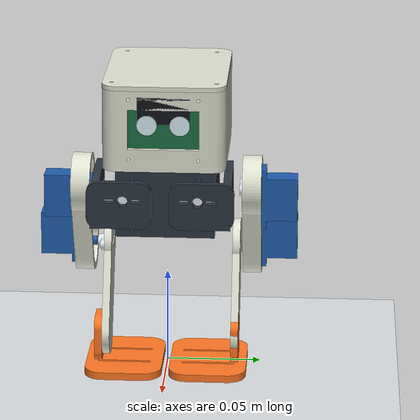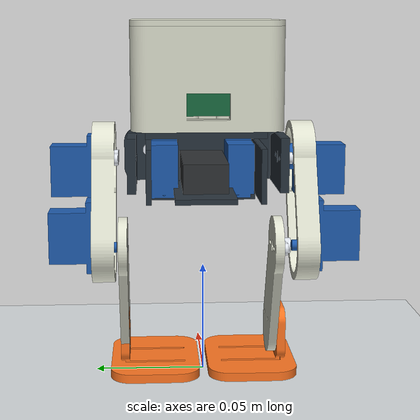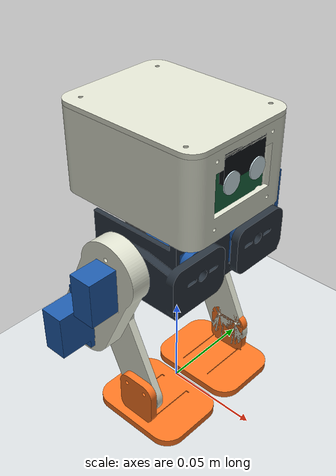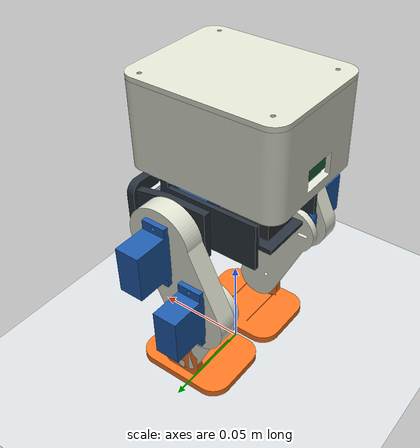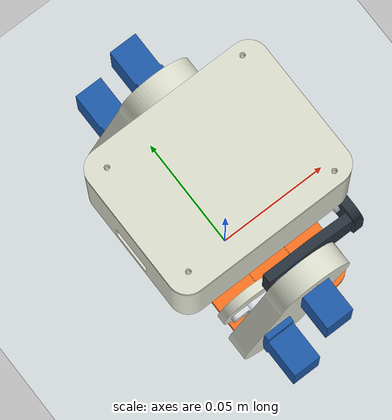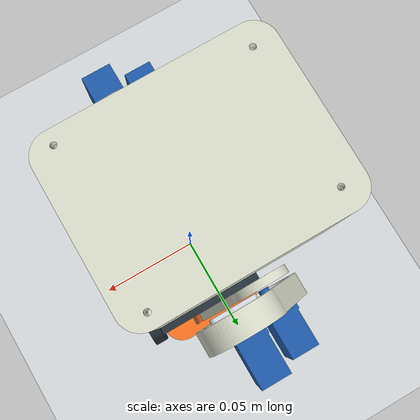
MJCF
<mujoco model="Microduck SG90 none - 6 DOF">

  <compiler angle="degree" meshdir="meshes" />
  <option timestep=".002" gravity="0 0 -9.81" integrator="implicitfast" />
  <visual>
    <global offwidth="1600" offheight="1400" />
  </visual>
  <asset>
    <mesh name="01_trunk_tub" file="01_trunk_tub.stl" scale=".001 .001 .001" />
    <mesh name="02_trunk_lid" file="02_trunk_lid.stl" scale=".001 .001 .001" />
    <mesh name="03_hip_block" file="03_hip_block.stl" scale=".001 .001 .001" />
    <mesh name="L_hip_roll" file="L_hip_roll.stl" scale=".001 .001 .001" />
    <mesh name="R_hip_roll" file="R_hip_roll.stl" scale=".001 .001 .001" />
    <mesh name="PCA9685_driver_envelope" file="PCA9685_driver_envelope.stl" scale=".001 .001 .001" />
    <mesh name="ESP32_C3_SuperMini_envelope" file="ESP32_C3_SuperMini_envelope.stl" scale=".001 .001 .001" />
    <mesh name="regulator_5V_envelope" file="regulator_5V_envelope.stl" scale=".001 .001 .001" />
    <mesh name="IMU_GY521_envelope" file="IMU_GY521_envelope.stl" scale=".001 .001 .001" />
    <mesh name="battery_2S_envelope" file="battery_2S_envelope.stl" scale=".001 .001 .001" />
    <mesh name="OLED_1in6_envelope" file="OLED_1in6_envelope.stl" scale=".001 .001 .001" />
    <mesh name="OLED_screen" file="OLED_screen.stl" scale=".001 .001 .001" />
    <mesh name="OLED_eye_R" file="OLED_eye_R.stl" scale=".001 .001 .001" />
    <mesh name="OLED_eye_L" file="OLED_eye_L.stl" scale=".001 .001 .001" />
    <mesh name="04_hip_bracket_L" file="04_hip_bracket_L.stl" scale=".001 .001 .001" />
    <mesh name="L_hip_roll_stock_horn" file="L_hip_roll_stock_horn.stl" scale=".001 .001 .001" />
    <mesh name="L_hip_pitch_stock_horn" file="L_hip_pitch_stock_horn.stl" scale=".001 .001 .001" />
    <mesh name="05_thigh_L" file="05_thigh_L.stl" scale=".001 .001 .001" />
    <mesh name="L_hip_pitch" file="L_hip_pitch.stl" scale=".001 .001 .001" />
    <mesh name="L_knee" file="L_knee.stl" scale=".001 .001 .001" />
    <mesh name="06_shin_L" file="06_shin_L.stl" scale=".001 .001 .001" />
    <mesh name="07_foot_L" file="07_foot_L.stl" scale=".001 .001 .001" />
    <mesh name="L_knee_stock_horn" file="L_knee_stock_horn.stl" scale=".001 .001 .001" />
    <mesh name="04_hip_bracket_R" file="04_hip_bracket_R.stl" scale=".001 .001 .001" />
    <mesh name="R_hip_roll_stock_horn" file="R_hip_roll_stock_horn.stl" scale=".001 .001 .001" />
    <mesh name="R_hip_pitch_stock_horn" file="R_hip_pitch_stock_horn.stl" scale=".001 .001 .001" />
    <mesh name="05_thigh_R" file="05_thigh_R.stl" scale=".001 .001 .001" />
    <mesh name="R_hip_pitch" file="R_hip_pitch.stl" scale=".001 .001 .001" />
    <mesh name="R_knee" file="R_knee.stl" scale=".001 .001 .001" />
    <mesh name="06_shin_R" file="06_shin_R.stl" scale=".001 .001 .001" />
    <mesh name="07_foot_R" file="07_foot_R.stl" scale=".001 .001 .001" />
    <mesh name="R_knee_stock_horn" file="R_knee_stock_horn.stl" scale=".001 .001 .001" />
  </asset>
  <worldbody>
    <light pos=".2 -.3 .7" dir="-.2 .3 -.7" />
    <geom name="floor" type="plane" size="2 2 .02" rgba=".85 .87 .88 1" friction=".9 .01 .001" />
    <body name="torso" pos="0 0 0.117">
      <freejoint name="root" />
      <inertial pos="-0.00191081176 -0.000117000263 0.00493232987" mass="0.196580755" fullinertia="0.00016091103 0.000196918191 0.000146118157 -2.1105133e-07 1.10072726e-05 2.51556413e-07" />
      <geom type="mesh" mesh="01_trunk_tub" pos="0 0 -0.117" rgba="0.88 0.89 0.82 1" contype="0" conaffinity="0" group="1" mass="0" />
      <geom name="01_trunk_tub_collision" type="mesh" mesh="01_trunk_tub" pos="0 0 -0.117" contype="2" conaffinity="1" group="3" rgba="0 0 0 0" friction=".9 .01 .001" mass="0" />
      <geom type="mesh" mesh="02_trunk_lid" pos="0 0 -0.117" rgba="0.88 0.89 0.82 1" contype="0" conaffinity="0" group="1" mass="0" />
      <geom name="02_trunk_lid_collision" type="mesh" mesh="02_trunk_lid" pos="0 0 -0.117" contype="2" conaffinity="1" group="3" rgba="0 0 0 0" friction=".9 .01 .001" mass="0" />
      <geom type="mesh" mesh="03_hip_block" pos="0 0 -0.117" rgba="0.16 0.2 0.24 1" contype="0" conaffinity="0" group="1" mass="0" />
      <geom name="03_hip_block_collision" type="mesh" mesh="03_hip_block" pos="0 0 -0.117" contype="2" conaffinity="1" group="3" rgba="0 0 0 0" friction=".9 .01 .001" mass="0" />
      <geom type="mesh" mesh="L_hip_roll" pos="0 0 -0.117" rgba="0.12 0.36 0.68 1" contype="0" conaffinity="0" group="1" mass="0" />
      <geom type="mesh" mesh="R_hip_roll" pos="0 0 -0.117" rgba="0.12 0.36 0.68 1" contype="0" conaffinity="0" group="1" mass="0" />
      <geom type="mesh" mesh="PCA9685_driver_envelope" pos="0 0 -0.117" rgba="0.1 0.42 0.25 1" contype="0" conaffinity="0" group="1" mass="0" />
      <geom type="mesh" mesh="ESP32_C3_SuperMini_envelope" pos="0 0 -0.117" rgba="0.1 0.42 0.25 1" contype="0" conaffinity="0" group="1" mass="0" />
      <geom type="mesh" mesh="regulator_5V_envelope" pos="0 0 -0.117" rgba="0.1 0.42 0.25 1" contype="0" conaffinity="0" group="1" mass="0" />
      <geom type="mesh" mesh="IMU_GY521_envelope" pos="0 0 -0.117" rgba="0.1 0.42 0.25 1" contype="0" conaffinity="0" group="1" mass="0" />
      <geom type="mesh" mesh="battery_2S_envelope" pos="0 0 -0.117" rgba="0.18 0.19 0.2 1" contype="0" conaffinity="0" group="1" mass="0" />
      <geom type="mesh" mesh="OLED_1in6_envelope" pos="0 0 -0.117" rgba="0.1 0.42 0.25 1" contype="0" conaffinity="0" group="1" mass="0" />
      <geom type="mesh" mesh="OLED_screen" pos="0 0 -0.117" rgba="0.06 0.07 0.09 1" contype="0" conaffinity="0" group="1" mass="0" />
      <geom type="mesh" mesh="OLED_eye_R" pos="0 0 -0.117" rgba="0.85 0.93 0.96 1" contype="0" conaffinity="0" group="1" mass="0" />
      <geom type="mesh" mesh="OLED_eye_L" pos="0 0 -0.117" rgba="0.85 0.93 0.96 1" contype="0" conaffinity="0" group="1" mass="0" />
      <camera name="follow_cam" mode="trackcom" pos=".42 -.52 .20" xyaxes=".784 .621 0 -.18 .227 .957" />
      <site name="imu" pos="-.019 .018 .010" size=".001" rgba="0 0 0 0" />
      <body name="L_hip" pos="0.0225 0.0175 -0.017">
        <joint name="L_hip_roll" axis="1 0 0" range="-11 11" damping=".008" armature=".000004" frictionloss=".003" />
        <inertial pos="-0.00217815323 0.00910788784 -0.00257522333" mass="0.00920948974" fullinertia="1.23734062e-06 2.18875924e-06 2.53876102e-06 6.78709944e-07 1.34796162e-08 7.84272573e-09" />
        <geom type="mesh" mesh="04_hip_bracket_L" pos="-0.0225 -0.0175 -0.1" rgba="0.16 0.2 0.24 1" contype="0" conaffinity="0" group="1" mass="0" />
        <geom name="04_hip_bracket_L_collision" type="mesh" mesh="04_hip_bracket_L" pos="-0.0225 -0.0175 -0.1" contype="2" conaffinity="1" group="3" rgba="0 0 0 0" friction=".9 .01 .001" mass="0" />
        <geom type="mesh" mesh="L_hip_roll_stock_horn" pos="-0.0225 -0.0175 -0.1" rgba="0.87 0.89 0.92 1" contype="0" conaffinity="0" group="1" mass="0" />
        <geom type="mesh" mesh="L_hip_pitch_stock_horn" pos="-0.0225 -0.0175 -0.1" rgba="0.87 0.89 0.92 1" contype="0" conaffinity="0" group="1" mass="0" />
        <body name="L_thigh" pos="-0.0185 0.025 0">
          <joint name="L_hip_pitch" axis="0 1 0" range="-60 60" damping=".008" armature=".000004" frictionloss=".003" />
          <inertial pos="-0.00873442771 0.00601184611 -0.0186465311" mass="0.0295168309" fullinertia="1.09020278e-05 1.27991083e-05 5.41724903e-06 2.84983994e-08 -3.77473426e-06 6.08392797e-08" />
          <geom type="mesh" mesh="05_thigh_L" pos="-0.004 -0.0425 -0.1" rgba="0.88 0.89 0.82 1" contype="0" conaffinity="0" group="1" mass="0" />
          <geom name="05_thigh_L_collision" type="mesh" mesh="05_thigh_L" pos="-0.004 -0.0425 -0.1" contype="2" conaffinity="1" group="3" rgba="0 0 0 0" friction=".9 .01 .001" mass="0" />
          <geom type="mesh" mesh="L_hip_pitch" pos="-0.004 -0.0425 -0.1" rgba="0.12 0.36 0.68 1" contype="0" conaffinity="0" group="1" mass="0" />
          <geom type="mesh" mesh="L_knee" pos="-0.004 -0.0425 -0.1" rgba="0.12 0.36 0.68 1" contype="0" conaffinity="0" group="1" mass="0" />
          <body name="L_shin" pos="-0.0178 0 -0.038">
            <joint name="L_knee" axis="0 1 0" range="-75 75" damping=".008" armature=".000004" frictionloss=".003" />
            <inertial pos="0.0163118316 -0.00548613514 -0.0428241605" mass="0.0212519968" fullinertia="1.24889653e-05 1.45026375e-05 6.12763026e-06 -4.02991457e-07 3.34610252e-06 1.70533071e-06" />
            <geom type="mesh" mesh="06_shin_L" pos="0.0138 -0.0425 -0.062" rgba="0.88 0.89 0.82 1" contype="0" conaffinity="0" group="1" mass="0" />
            <geom name="06_shin_L_collision" type="mesh" mesh="06_shin_L" pos="0.0138 -0.0425 -0.062" contype="2" conaffinity="1" group="3" rgba="0 0 0 0" friction=".9 .01 .001" mass="0" />
            <geom type="mesh" mesh="07_foot_R" pos="0.0138 0.0225 -0.062" rgba="1 0.46 0.13 1" contype="0" conaffinity="0" group="1" mass="0" />
            <geom type="mesh" mesh="L_knee_stock_horn" pos="0.0138 -0.0425 -0.062" rgba="0.87 0.89 0.92 1" contype="0" conaffinity="0" group="1" mass="0" />
            <geom name="L_sole" type="box" size=".027 .0205 .002" pos="0.0208 -0.0200 -0.06" rgba="1 .46 .13 0" friction=".9 .01 .001" mass="0" contype="2" conaffinity="1" />
            <site name="L_foot_touch" type="box" size=".027 .0205 .0021" pos="0.0208 -0.0200 -0.06" rgba="0 0 0 0" />
          </body>
        </body>
      </body>
      <body name="R_hip" pos="0.0225 -0.0175 -0.017">
        <joint name="R_hip_roll" axis="1 0 0" range="-11 11" damping=".008" armature=".000004" frictionloss=".003" />
        <inertial pos="-0.00217367666 -0.00910896852 -0.00257543346" mass="0.0092045998" fullinertia="1.23690077e-06 2.18723986e-06 2.53693843e-06 -6.7813816e-07 1.33470243e-08 -7.7832176e-09" />
        <geom type="mesh" mesh="04_hip_bracket_R" pos="-0.0225 0.0175 -0.1" rgba="0.16 0.2 0.24 1" contype="0" conaffinity="0" group="1" mass="0" />
        <geom name="04_hip_bracket_R_collision" type="mesh" mesh="04_hip_bracket_R" pos="-0.0225 0.0175 -0.1" contype="2" conaffinity="1" group="3" rgba="0 0 0 0" friction=".9 .01 .001" mass="0" />
        <geom type="mesh" mesh="R_hip_roll_stock_horn" pos="-0.0225 0.0175 -0.1" rgba="0.87 0.89 0.92 1" contype="0" conaffinity="0" group="1" mass="0" />
        <geom type="mesh" mesh="R_hip_pitch_stock_horn" pos="-0.0225 0.0175 -0.1" rgba="0.87 0.89 0.92 1" contype="0" conaffinity="0" group="1" mass="0" />
        <body name="R_thigh" pos="-0.0185 -0.025 0">
          <joint name="R_hip_pitch" axis="0 1 0" range="-60 60" damping=".008" armature=".000004" frictionloss=".003" />
          <inertial pos="-0.0087209538 -0.00600570466 -0.0186356772" mass="0.029557682" fullinertia="1.09341279e-05 1.28369697e-05 5.42450315e-06 -3.09645442e-08 -3.78944872e-06 -6.28281051e-08" />
          <geom type="mesh" mesh="05_thigh_R" pos="-0.004 0.0425 -0.1" rgba="0.88 0.89 0.82 1" contype="0" conaffinity="0" group="1" mass="0" />
          <geom name="05_thigh_R_collision" type="mesh" mesh="05_thigh_R" pos="-0.004 0.0425 -0.1" contype="2" conaffinity="1" group="3" rgba="0 0 0 0" friction=".9 .01 .001" mass="0" />
          <geom type="mesh" mesh="R_hip_pitch" pos="-0.004 0.0425 -0.1" rgba="0.12 0.36 0.68 1" contype="0" conaffinity="0" group="1" mass="0" />
          <geom type="mesh" mesh="R_knee" pos="-0.004 0.0425 -0.1" rgba="0.12 0.36 0.68 1" contype="0" conaffinity="0" group="1" mass="0" />
          <body name="R_shin" pos="-0.0178 0 -0.038">
            <joint name="R_knee" axis="0 1 0" range="-75 75" damping=".008" armature=".000004" frictionloss=".003" />
            <inertial pos="0.0163026597 0.00549059718 -0.042794898" mass="0.021273678" fullinertia="1.25224711e-05 1.45402052e-05 6.13254874e-06 4.03933959e-07 3.35830815e-06 -1.70813041e-06" />
            <geom type="mesh" mesh="06_shin_R" pos="0.0138 0.0425 -0.062" rgba="0.88 0.89 0.82 1" contype="0" conaffinity="0" group="1" mass="0" />
            <geom name="06_shin_R_collision" type="mesh" mesh="06_shin_R" pos="0.0138 0.0425 -0.062" contype="2" conaffinity="1" group="3" rgba="0 0 0 0" friction=".9 .01 .001" mass="0" />
            <geom type="mesh" mesh="07_foot_L" pos="0.0138 -0.0225 -0.062" rgba="1 0.46 0.13 1" contype="0" conaffinity="0" group="1" mass="0" />
            <geom type="mesh" mesh="R_knee_stock_horn" pos="0.0138 0.0425 -0.062" rgba="0.87 0.89 0.92 1" contype="0" conaffinity="0" group="1" mass="0" />
            <geom name="R_sole" type="box" size=".027 .0205 .002" pos="0.0208 0.0200 -0.06" rgba="1 .46 .13 0" friction=".9 .01 .001" mass="0" contype="2" conaffinity="1" />
            <site name="R_foot_touch" type="box" size=".027 .0205 .0021" pos="0.0208 0.0200 -0.06" rgba="0 0 0 0" />
          </body>
        </body>
      </body>
    </body>
  </worldbody>
  <actuator>
    <position name="L_hip_roll_servo" joint="L_hip_roll" kp="1.2" kv=".025" ctrlrange="-0.191986 0.191986" forcerange="-.177 .177" />
    <position name="L_hip_pitch_servo" joint="L_hip_pitch" kp="1.2" kv=".025" ctrlrange="-1.047198 1.047198" forcerange="-.177 .177" />
    <position name="L_knee_servo" joint="L_knee" kp="1.2" kv=".025" ctrlrange="-1.308997 1.308997" forcerange="-.177 .177" />
    <position name="R_hip_roll_servo" joint="R_hip_roll" kp="1.2" kv=".025" ctrlrange="-0.191986 0.191986" forcerange="-.177 .177" />
    <position name="R_hip_pitch_servo" joint="R_hip_pitch" kp="1.2" kv=".025" ctrlrange="-1.047198 1.047198" forcerange="-.177 .177" />
    <position name="R_knee_servo" joint="R_knee" kp="1.2" kv=".025" ctrlrange="-1.308997 1.308997" forcerange="-.177 .177" />
  </actuator>
  <sensor>
    <touch name="L_touch" site="L_foot_touch" />
    <touch name="R_touch" site="R_foot_touch" />
    <gyro name="imu_gyro" site="imu" />
    <accelerometer name="imu_accel" site="imu" />
  </sensor>
  <keyframe>
    <key name="neutral_stance" qpos="0 0 0.117 1 0 0 0 0 0 0 0 0 0 " ctrl="0 0 0 0 0 0 " />
  </keyframe>
</mujoco>
